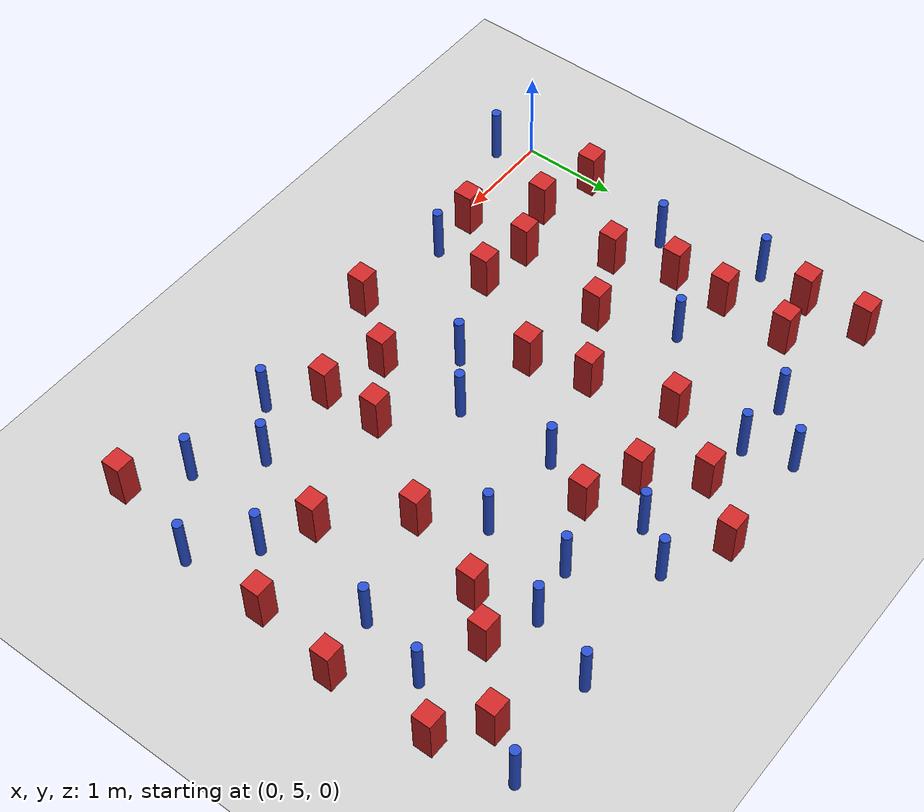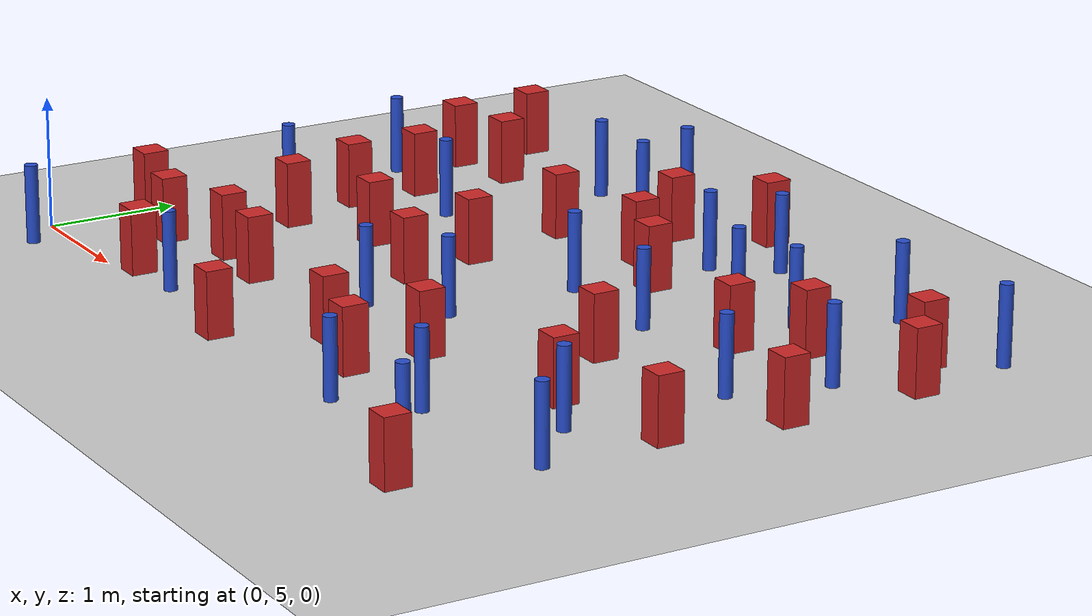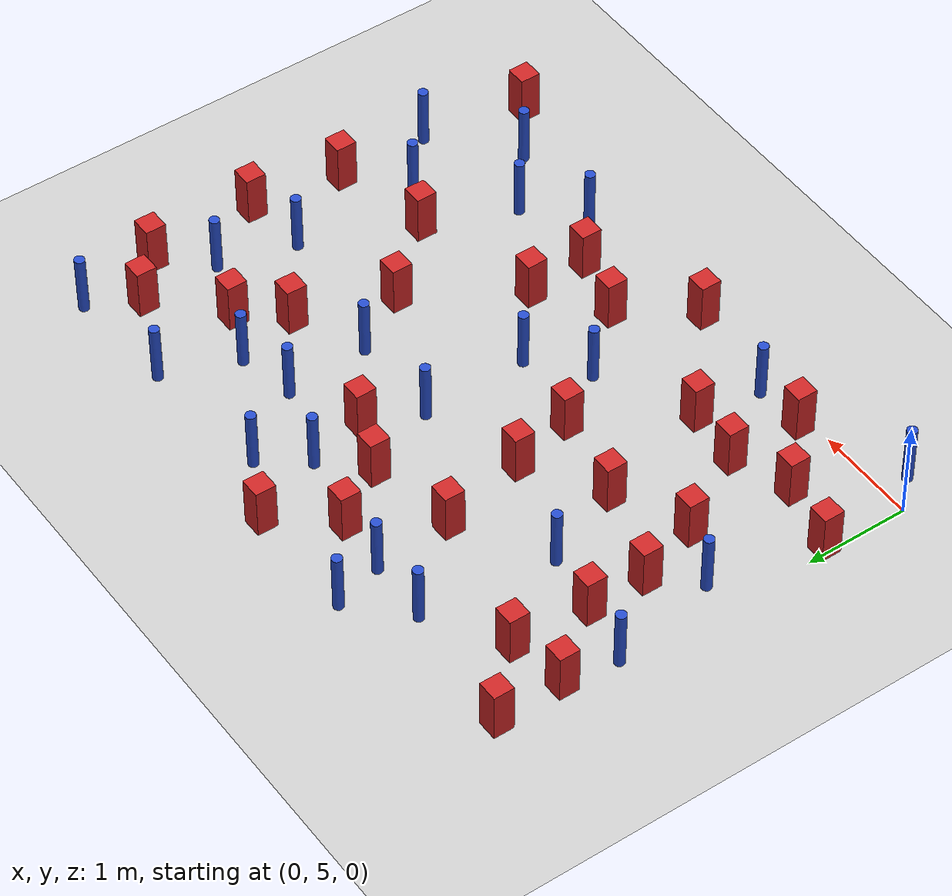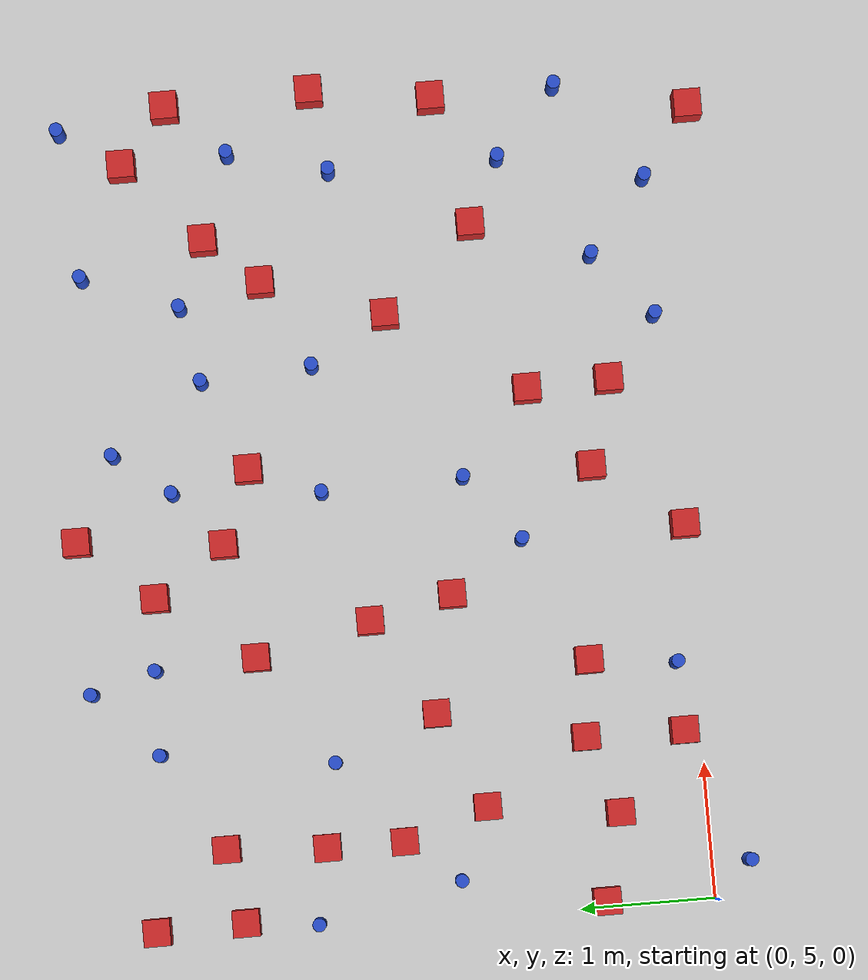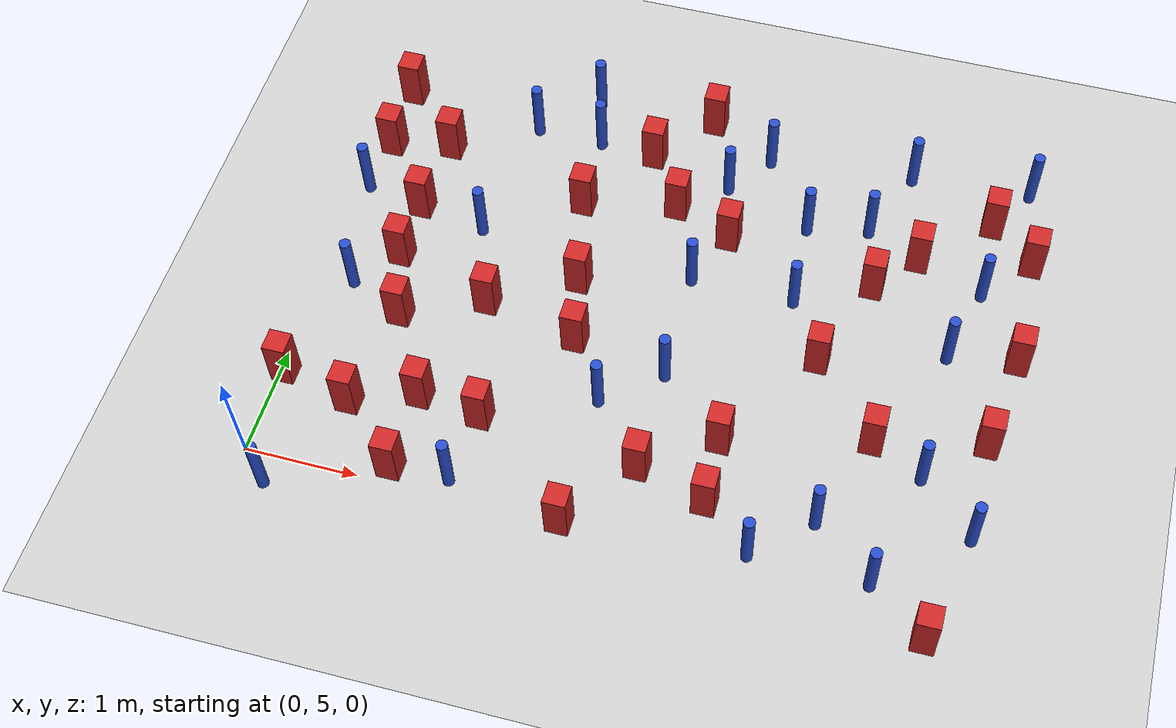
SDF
<sdf version="1.6">
 <world name="default">
  <model name="ground_plane">
   <static>1</static>
   <link name="link">
    <collision name="collision">
     <geometry><plane><normal>0 0 1</normal><size>100 100</size></plane></geometry>
     <surface><friction><ode><mu>100</mu><mu2>50</mu2></ode></friction></surface>
    </collision>
    <visual name="visual">
     <cast_shadows>0</cast_shadows>
     <geometry><plane><normal>0 0 1</normal><size>100 100</size></plane></geometry>
     <material>
      <ambient>1.0 1.0 1.0 1.0</ambient>
      <diffuse>0.8 0.8 0.8 1.0</diffuse>
      <specular>0.01 0.01 0.01 1.000000</specular>
     </material>
    </visual>
   </link>
  </model>
  <model name="square_post_obstacle0">
   <static>true</static>
   <pose>4.81066511319 7.96962893868 8.22691968438e-08 7.22125133819e-06 -7.54495500217e-07 2.29674213826e-05</pose>
   <link name="link">
    <pose>0 0 0.25 0 -0 0</pose>
    <inertial>
     <mass>100</mass>
     <inertia>
      <ixx>0.166667</ixx>
      <ixy>0</ixy>
      <ixz>0</ixz>
      <iyy>0.166667</iyy>
      <iyz>0</iyz>
      <izz>0.166667</izz>
     </inertia>
    </inertial>
    <collision name="collision"><geometry><box><size>.2 .2 .5</size></box></geometry></collision>
    <visual name="visual">
     <geometry><box><size>.2 .2 .5</size></box></geometry>
     <material>
      <script><name>Gazebo/Red</name><uri>file://media/materials/scripts/gazebo.material</uri></script>
     </material>
    </visual>
   </link>
  </model>
  <model name="square_post_obstacle2">
   <static>true</static>
   <pose>0.613346342673 7.25134652475 8.22691968438e-08 7.2212513382e-06 -7.54495500217e-07 2.29674213826e-05</pose>
   <link name="link">
    <pose>0 0 0.25 0 -0 0</pose>
    <inertial>
     <mass>100</mass>
     <inertia>
      <ixx>0.166667</ixx>
      <ixy>0</ixy>
      <ixz>0</ixz>
      <iyy>0.166667</iyy>
      <iyz>0</iyz>
      <izz>0.166667</izz>
     </inertia>
    </inertial>
    <collision name="collision"><geometry><box><size>.2 .2 .5</size></box></geometry></collision>
    <visual name="visual">
     <geometry><box><size>.2 .2 .5</size></box></geometry>
     <material>
      <script><name>Gazebo/Red</name><uri>file://media/materials/scripts/gazebo.material</uri></script>
     </material>
    </visual>
   </link>
  </model>
  <model name="square_post_obstacle6">
   <static>true</static>
   <pose>1.26814479406 5.86016983149 8.22691968438e-08 7.2212513382e-06 -7.54495500217e-07 2.29674213826e-05</pose>
   <link name="link">
    <pose>0 0 0.25 0 -0 0</pose>
    <inertial>
     <mass>100</mass>
     <inertia>
      <ixx>0.166667</ixx>
      <ixy>0</ixy>
      <ixz>0</ixz>
      <iyy>0.166667</iyy>
      <iyz>0</iyz>
      <izz>0.166667</izz>
     </inertia>
    </inertial>
    <collision name="collision"><geometry><box><size>.2 .2 .5</size></box></geometry></collision>
    <visual name="visual">
     <geometry><box><size>.2 .2 .5</size></box></geometry>
     <material>
      <script><name>Gazebo/Red</name><uri>file://media/materials/scripts/gazebo.material</uri></script>
     </material>
    </visual>
   </link>
  </model>
  <model name="pole_obstacle12">
   <static>true</static>
   <pose>3.22318054179 7.64608850501 2.88873142074e-08 -9.90536689859e-09 4.60219948989e-07 -1.20965994961e-07</pose>
   <link name="link">
    <pose>0 0 0.3 0 -0 0</pose>
    <inertial>
     <mass>1</mass>
     <inertia><ixx>0.145833</ixx><ixy>0</ixy><ixz>0</ixz><iyy>0.145833</iyy><iyz>0</iyz><izz>0.125</izz></inertia>
    </inertial>
    <collision name="collision">
     <geometry><cylinder><radius>0.05</radius><length>.6</length></cylinder></geometry>
    </collision>
    <visual name="visual">
     <geometry><cylinder><radius>0.05</radius><length>.6</length></cylinder></geometry>
     <material>
      <script><name>Gazebo/Blue</name><uri>file://media/materials/scripts/gazebo.material</uri></script>
     </material>
    </visual>
   </link>
  </model>
  <model name="square_post_obstacle8">
   <static>true</static>
   <pose>4.49751720878 7.07438937108 8.22691968438e-08 7.2212513382e-06 -7.54495500217e-07 2.29674213826e-05</pose>
   <link name="link">
    <pose>0 0 0.25 0 -0 0</pose>
    <inertial>
     <mass>100</mass>
     <inertia>
      <ixx>0.166667</ixx>
      <ixy>0</ixy>
      <ixz>0</ixz>
      <iyy>0.166667</iyy>
      <iyz>0</iyz>
      <izz>0.166667</izz>
     </inertia>
    </inertial>
    <collision name="collision"><geometry><box><size>.2 .2 .5</size></box></geometry></collision>
    <visual name="visual">
     <geometry><box><size>.2 .2 .5</size></box></geometry>
     <material>
      <script><name>Gazebo/Red</name><uri>file://media/materials/scripts/gazebo.material</uri></script>
     </material>
    </visual>
   </link>
  </model>
  <model name="square_post_obstacle12">
   <static>true</static>
   <pose>6.15612264318 8.56737205794 8.22691968438e-08 7.22125133819e-06 -7.54495500217e-07 2.29674213826e-05</pose>
   <link name="link">
    <pose>0 0 0.25 0 -0 0</pose>
    <inertial>
     <mass>100</mass>
     <inertia>
      <ixx>0.166667</ixx>
      <ixy>0</ixy>
      <ixz>0</ixz>
      <iyy>0.166667</iyy>
      <iyz>0</iyz>
      <izz>0.166667</izz>
     </inertia>
    </inertial>
    <collision name="collision"><geometry><box><size>.2 .2 .5</size></box></geometry></collision>
    <visual name="visual">
     <geometry><box><size>.2 .2 .5</size></box></geometry>
     <material>
      <script><name>Gazebo/Red</name><uri>file://media/materials/scripts/gazebo.material</uri></script>
     </material>
    </visual>
   </link>
  </model>
  <model name="pole_obstacle39">
   <static>true</static>
   <pose>1.76379033655 5.14610116585 2.88873142074e-08 -9.90536689852e-09 4.60219948989e-07 -1.2096599496e-07</pose>
   <link name="link">
    <pose>0 0 0.3 0 -0 0</pose>
    <inertial>
     <mass>1</mass>
     <inertia><ixx>0.145833</ixx><ixy>0</ixy><ixz>0</ixz><iyy>0.145833</iyy><iyz>0</iyz><izz>0.125</izz></inertia>
    </inertial>
    <collision name="collision">
     <geometry><cylinder><radius>0.05</radius><length>.6</length></cylinder></geometry>
    </collision>
    <visual name="visual">
     <geometry><cylinder><radius>0.05</radius><length>.6</length></cylinder></geometry>
     <material>
      <script><name>Gazebo/Blue</name><uri>file://media/materials/scripts/gazebo.material</uri></script>
     </material>
    </visual>
   </link>
  </model>
  <model name="pole_obstacle42">
   <static>true</static>
   <pose>5.5778330099 6.15277064663 2.88873142074e-08 -9.90536690842e-09 4.60219948965e-07 -1.20965994976e-07</pose>
   <link name="link">
    <pose>0 0 0.3 0 -0 0</pose>
    <inertial>
     <mass>1</mass>
     <inertia><ixx>0.145833</ixx><ixy>0</ixy><ixz>0</ixz><iyy>0.145833</iyy><iyz>0</iyz><izz>0.125</izz></inertia>
    </inertial>
    <collision name="collision">
     <geometry><cylinder><radius>0.05</radius><length>.6</length></cylinder></geometry>
    </collision>
    <visual name="visual">
     <geometry><cylinder><radius>0.05</radius><length>.6</length></cylinder></geometry>
     <material>
      <script><name>Gazebo/Blue</name><uri>file://media/materials/scripts/gazebo.material</uri></script>
     </material>
    </visual>
   </link>
  </model>
  <model name="pole_obstacle45">
   <static>true</static>
   <pose>2.01332987493 8.97232441022 2.88873142074e-08 -9.90536692041e-09 4.60219948937e-07 -1.20965994983e-07</pose>
   <link name="link">
    <pose>0 0 0.3 0 -0 0</pose>
    <inertial>
     <mass>1</mass>
     <inertia><ixx>0.145833</ixx><ixy>0</ixy><ixz>0</ixz><iyy>0.145833</iyy><iyz>0</iyz><izz>0.125</izz></inertia>
    </inertial>
    <collision name="collision">
     <geometry><cylinder><radius>0.05</radius><length>.6</length></cylinder></geometry>
    </collision>
    <visual name="visual">
     <geometry><cylinder><radius>0.05</radius><length>.6</length></cylinder></geometry>
     <material>
      <script><name>Gazebo/Blue</name><uri>file://media/materials/scripts/gazebo.material</uri></script>
     </material>
    </visual>
   </link>
  </model>
  <model name="square_post_obstacle38">
   <static>true</static>
   <pose>6.18678559936 7.49544702307 8.22691968438e-08 7.2212513382e-06 -7.54495500217e-07 2.29674213826e-05</pose>
   <link name="link">
    <pose>0 0 0.25 0 -0 0</pose>
    <inertial>
     <mass>100</mass>
     <inertia>
      <ixx>0.166667</ixx>
      <ixy>0</ixy>
      <ixz>0</ixz>
      <iyy>0.166667</iyy>
      <iyz>0</iyz>
      <izz>0.166667</izz>
     </inertia>
    </inertial>
    <collision name="collision"><geometry><box><size>.2 .2 .5</size></box></geometry></collision>
    <visual name="visual">
     <geometry><box><size>.2 .2 .5</size></box></geometry>
     <material>
      <script><name>Gazebo/Red</name><uri>file://media/materials/scripts/gazebo.material</uri></script>
     </material>
    </visual>
   </link>
  </model>
  <model name="pole_obstacle56">
   <static>true</static>
   <pose>4.3289605643 5.09669228782 2.88873142074e-08 -9.90536690842e-09 4.60219948965e-07 -1.20965994976e-07</pose>
   <link name="link">
    <pose>0 0 0.3 0 -0 0</pose>
    <inertial>
     <mass>1</mass>
     <inertia><ixx>0.145833</ixx><ixy>0</ixy><ixz>0</ixz><iyy>0.145833</iyy><iyz>0</iyz><izz>0.125</izz></inertia>
    </inertial>
    <collision name="collision">
     <geometry><cylinder><radius>0.05</radius><length>.6</length></cylinder></geometry>
    </collision>
    <visual name="visual">
     <geometry><cylinder><radius>0.05</radius><length>.6</length></cylinder></geometry>
     <material>
      <script><name>Gazebo/Blue</name><uri>file://media/materials/scripts/gazebo.material</uri></script>
     </material>
    </visual>
   </link>
  </model>
  <model name="pole_obstacle58">
   <static>true</static>
   <pose>6.07389857568 5.69617216633 2.88873142074e-08 -9.90536690842e-09 4.60219948965e-07 -1.20965994976e-07</pose>
   <link name="link">
    <pose>0 0 0.3 0 -0 0</pose>
    <inertial>
     <mass>1</mass>
     <inertia><ixx>0.145833</ixx><ixy>0</ixy><ixz>0</ixz><iyy>0.145833</iyy><iyz>0</iyz><izz>0.125</izz></inertia>
    </inertial>
    <collision name="collision">
     <geometry><cylinder><radius>0.05</radius><length>.6</length></cylinder></geometry>
    </collision>
    <visual name="visual">
     <geometry><cylinder><radius>0.05</radius><length>.6</length></cylinder></geometry>
     <material>
      <script><name>Gazebo/Blue</name><uri>file://media/materials/scripts/gazebo.material</uri></script>
     </material>
    </visual>
   </link>
  </model>
  <model name="pole_obstacle60">
   <static>true</static>
   <pose>4.93993918342 9.28264716103 2.88873142074e-08 -9.9053668967e-09 4.60219948993e-07 -1.20965994957e-07</pose>
   <link name="link">
    <pose>0 0 0.3 0 -0 0</pose>
    <inertial>
     <mass>1</mass>
     <inertia><ixx>0.145833</ixx><ixy>0</ixy><ixz>0</ixz><iyy>0.145833</iyy><iyz>0</iyz><izz>0.125</izz></inertia>
    </inertial>
    <collision name="collision">
     <geometry><cylinder><radius>0.05</radius><length>.6</length></cylinder></geometry>
    </collision>
    <visual name="visual">
     <geometry><cylinder><radius>0.05</radius><length>.6</length></cylinder></geometry>
     <material>
      <script><name>Gazebo/Blue</name><uri>file://media/materials/scripts/gazebo.material</uri></script>
     </material>
    </visual>
   </link>
  </model>
  <model name="pole_obstacle61">
   <static>true</static>
   <pose>4.66513502519 8.57745974839 2.88873142074e-08 -9.9053668967e-09 4.60219948993e-07 -1.20965994957e-07</pose>
   <link name="link">
    <pose>0 0 0.3 0 -0 0</pose>
    <inertial>
     <mass>1</mass>
     <inertia><ixx>0.145833</ixx><ixy>0</ixy><ixz>0</ixz><iyy>0.145833</iyy><iyz>0</iyz><izz>0.125</izz></inertia>
    </inertial>
    <collision name="collision">
     <geometry><cylinder><radius>0.05</radius><length>.6</length></cylinder></geometry>
    </collision>
    <visual name="visual">
     <geometry><cylinder><radius>0.05</radius><length>.6</length></cylinder></geometry>
     <material>
      <script><name>Gazebo/Blue</name><uri>file://media/materials/scripts/gazebo.material</uri></script>
     </material>
    </visual>
   </link>
  </model>
  <model name="square_post_obstacle48">
   <static>true</static>
   <pose>0.66480196534 8.56048375507 8.22691968438e-08 7.22125133819e-06 -7.54495500217e-07 2.29674213826e-05</pose>
   <link name="link">
    <pose>0 0 0.25 0 -0 0</pose>
    <inertial>
     <mass>100</mass>
     <inertia>
      <ixx>0.166667</ixx>
      <ixy>0</ixy>
      <ixz>0</ixz>
      <iyy>0.166667</iyy>
      <iyz>0</iyz>
      <izz>0.166667</izz>
     </inertia>
    </inertial>
    <collision name="collision"><geometry><box><size>.2 .2 .5</size></box></geometry></collision>
    <visual name="visual">
     <geometry><box><size>.2 .2 .5</size></box></geometry>
     <material>
      <script><name>Gazebo/Red</name><uri>file://media/materials/scripts/gazebo.material</uri></script>
     </material>
    </visual>
   </link>
  </model>
  <model name="pole_obstacle65">
   <static>true</static>
   <pose>0.270718877437 4.73403094236 2.88873142074e-08 -9.90536689592e-09 4.60219948995e-07 -1.20965994956e-07</pose>
   <link name="link">
    <pose>0 0 0.3 0 -0 0</pose>
    <inertial>
     <mass>1</mass>
     <inertia><ixx>0.145833</ixx><ixy>0</ixy><ixz>0</ixz><iyy>0.145833</iyy><iyz>0</iyz><izz>0.125</izz></inertia>
    </inertial>
    <collision name="collision">
     <geometry><cylinder><radius>0.05</radius><length>.6</length></cylinder></geometry>
    </collision>
    <visual name="visual">
     <geometry><cylinder><radius>0.05</radius><length>.6</length></cylinder></geometry>
     <material>
      <script><name>Gazebo/Blue</name><uri>file://media/materials/scripts/gazebo.material</uri></script>
     </material>
    </visual>
   </link>
  </model>
  <model name="pole_obstacle72">
   <static>true</static>
   <pose>1.39050049285 8.98701235548 2.88873142074e-08 -9.90536690474e-09 4.60219948974e-07 -1.2096599497e-07</pose>
   <link name="link">
    <pose>0 0 0.3 0 -0 0</pose>
    <inertial>
     <mass>1</mass>
     <inertia><ixx>0.145833</ixx><ixy>0</ixy><ixz>0</ixz><iyy>0.145833</iyy><iyz>0</iyz><izz>0.125</izz></inertia>
    </inertial>
    <collision name="collision">
     <geometry><cylinder><radius>0.05</radius><length>.6</length></cylinder></geometry>
    </collision>
    <visual name="visual">
     <geometry><cylinder><radius>0.05</radius><length>.6</length></cylinder></geometry>
     <material>
      <script><name>Gazebo/Blue</name><uri>file://media/materials/scripts/gazebo.material</uri></script>
     </material>
    </visual>
   </link>
  </model>
  <model name="square_post_obstacle67">
   <static>true</static>
   <pose>2.05128967483 8.22743267712 8.22691968438e-08 7.22125133819e-06 -7.54495500217e-07 2.29674213826e-05</pose>
   <link name="link">
    <pose>0 0 0.25 0 -0 0</pose>
    <inertial>
     <mass>100</mass>
     <inertia>
      <ixx>0.166667</ixx>
      <ixy>0</ixy>
      <ixz>0</ixz>
      <iyy>0.166667</iyy>
      <iyz>0</iyz>
      <izz>0.166667</izz>
     </inertia>
    </inertial>
    <collision name="collision"><geometry><box><size>.2 .2 .5</size></box></geometry></collision>
    <visual name="visual">
     <geometry><box><size>.2 .2 .5</size></box></geometry>
     <material>
      <script><name>Gazebo/Red</name><uri>file://media/materials/scripts/gazebo.material</uri></script>
     </material>
    </visual>
   </link>
  </model>
  <model name="pole_obstacle85">
   <static>true</static>
   <pose>4.1590695214 7.64211157319 2.88873142074e-08 -9.90536690842e-09 4.60219948965e-07 -1.20965994976e-07</pose>
   <link name="link">
    <pose>0 0 0.3 0 -0 0</pose>
    <inertial>
     <mass>1</mass>
     <inertia><ixx>0.145833</ixx><ixy>0</ixy><ixz>0</ixz><iyy>0.145833</iyy><iyz>0</iyz><izz>0.125</izz></inertia>
    </inertial>
    <collision name="collision">
     <geometry><cylinder><radius>0.05</radius><length>.6</length></cylinder></geometry>
    </collision>
    <visual name="visual">
     <geometry><cylinder><radius>0.05</radius><length>.6</length></cylinder></geometry>
     <material>
      <script><name>Gazebo/Blue</name><uri>file://media/materials/scripts/gazebo.material</uri></script>
     </material>
    </visual>
   </link>
  </model>
  <model name="square_post_obstacle76">
   <static>true</static>
   <pose>2.90208036587 8.39718754492 8.22691968438e-08 7.22125133819e-06 -7.54495500217e-07 2.29674213826e-05</pose>
   <link name="link">
    <pose>0 0 0.25 0 -0 0</pose>
    <inertial>
     <mass>100</mass>
     <inertia>
      <ixx>0.166667</ixx>
      <ixy>0</ixy>
      <ixz>0</ixz>
      <iyy>0.166667</iyy>
      <iyz>0</iyz>
      <izz>0.166667</izz>
     </inertia>
    </inertial>
    <collision name="collision"><geometry><box><size>.2 .2 .5</size></box></geometry></collision>
    <visual name="visual">
     <geometry><box><size>.2 .2 .5</size></box></geometry>
     <material>
      <script><name>Gazebo/Red</name><uri>file://media/materials/scripts/gazebo.material</uri></script>
     </material>
    </visual>
   </link>
  </model>
  <model name="square_post_obstacle77">
   <static>true</static>
   <pose>5.1116755871 6.38995868843 8.22691968438e-08 7.2212513382e-06 -7.54495500217e-07 2.29674213826e-05</pose>
   <link name="link">
    <pose>0 0 0.25 0 -0 0</pose>
    <inertial>
     <mass>100</mass>
     <inertia>
      <ixx>0.166667</ixx>
      <ixy>0</ixy>
      <ixz>0</ixz>
      <iyy>0.166667</iyy>
      <iyz>0</iyz>
      <izz>0.166667</izz>
     </inertia>
    </inertial>
    <collision name="collision"><geometry><box><size>.2 .2 .5</size></box></geometry></collision>
    <visual name="visual">
     <geometry><box><size>.2 .2 .5</size></box></geometry>
     <material>
      <script><name>Gazebo/Red</name><uri>file://media/materials/scripts/gazebo.material</uri></script>
     </material>
    </visual>
   </link>
  </model>
  <model name="square_post_obstacle80">
   <static>true</static>
   <pose>3.88543958892 5.47059608933 8.22691968438e-08 7.2212513382e-06 -7.54495500217e-07 2.29674213826e-05</pose>
   <link name="link">
    <pose>0 0 0.25 0 -0 0</pose>
    <inertial>
     <mass>100</mass>
     <inertia>
      <ixx>0.166667</ixx>
      <ixy>0</ixy>
      <ixz>0</ixz>
      <iyy>0.166667</iyy>
      <iyz>0</iyz>
      <izz>0.166667</izz>
     </inertia>
    </inertial>
    <collision name="collision"><geometry><box><size>.2 .2 .5</size></box></geometry></collision>
    <visual name="visual">
     <geometry><box><size>.2 .2 .5</size></box></geometry>
     <material>
      <script><name>Gazebo/Red</name><uri>file://media/materials/scripts/gazebo.material</uri></script>
     </material>
    </visual>
   </link>
  </model>
  <model name="square_post_obstacle82">
   <static>true</static>
   <pose>0.0534346377421 5.80671359667 8.22691968438e-08 7.2212513382e-06 -7.54495500217e-07 2.29674213826e-05</pose>
   <link name="link">
    <pose>0 0 0.25 0 -0 0</pose>
    <inertial>
     <mass>100</mass>
     <inertia>
      <ixx>0.166667</ixx>
      <ixy>0</ixy>
      <ixz>0</ixz>
      <iyy>0.166667</iyy>
      <iyz>0</iyz>
      <izz>0.166667</izz>
     </inertia>
    </inertial>
    <collision name="collision"><geometry><box><size>.2 .2 .5</size></box></geometry></collision>
    <visual name="visual">
     <geometry><box><size>.2 .2 .5</size></box></geometry>
     <material>
      <script><name>Gazebo/Red</name><uri>file://media/materials/scripts/gazebo.material</uri></script>
     </material>
    </visual>
   </link>
  </model>
  <model name="square_post_obstacle83">
   <static>true</static>
   <pose>2.25128187951 7.36881261451 8.22691968438e-08 7.2212513382e-06 -7.54495500217e-07 2.29674213826e-05</pose>
   <link name="link">
    <pose>0 0 0.25 0 -0 0</pose>
    <inertial>
     <mass>100</mass>
     <inertia>
      <ixx>0.166667</ixx>
      <ixy>0</ixy>
      <ixz>0</ixz>
      <iyy>0.166667</iyy>
      <iyz>0</iyz>
      <izz>0.166667</izz>
     </inertia>
    </inertial>
    <collision name="collision"><geometry><box><size>.2 .2 .5</size></box></geometry></collision>
    <visual name="visual">
     <geometry><box><size>.2 .2 .5</size></box></geometry>
     <material>
      <script><name>Gazebo/Red</name><uri>file://media/materials/scripts/gazebo.material</uri></script>
     </material>
    </visual>
   </link>
  </model>
  <model name="square_post_obstacle84">
   <static>true</static>
   <pose>0.818376541393 6.6230674518 8.22691968438e-08 7.2212513382e-06 -7.54495500217e-07 2.29674213826e-05</pose>
   <link name="link">
    <pose>0 0 0.25 0 -0 0</pose>
    <inertial>
     <mass>100</mass>
     <inertia>
      <ixx>0.166667</ixx>
      <ixy>0</ixy>
      <ixz>0</ixz>
      <iyy>0.166667</iyy>
      <iyz>0</iyz>
      <izz>0.166667</izz>
     </inertia>
    </inertial>
    <collision name="collision"><geometry><box><size>.2 .2 .5</size></box></geometry></collision>
    <visual name="visual">
     <geometry><box><size>.2 .2 .5</size></box></geometry>
     <material>
      <script><name>Gazebo/Red</name><uri>file://media/materials/scripts/gazebo.material</uri></script>
     </material>
    </visual>
   </link>
  </model>
  <model name="pole_obstacle100">
   <static>true</static>
   <pose>1.23139760334 7.70916895037 2.88873142074e-08 -9.90536689852e-09 4.60219948989e-07 -1.2096599496e-07</pose>
   <link name="link">
    <pose>0 0 0.3 0 -0 0</pose>
    <inertial>
     <mass>1</mass>
     <inertia><ixx>0.145833</ixx><ixy>0</ixy><ixz>0</ixz><iyy>0.145833</iyy><iyz>0</iyz><izz>0.125</izz></inertia>
    </inertial>
    <collision name="collision">
     <geometry><cylinder><radius>0.05</radius><length>.6</length></cylinder></geometry>
    </collision>
    <visual name="visual">
     <geometry><cylinder><radius>0.05</radius><length>.6</length></cylinder></geometry>
     <material>
      <script><name>Gazebo/Blue</name><uri>file://media/materials/scripts/gazebo.material</uri></script>
     </material>
    </visual>
   </link>
  </model>
  <model name="pole_obstacle101">
   <static>true</static>
   <pose>1.8765730401 9.453952291 2.88873142074e-08 -9.90536690474e-09 4.60219948974e-07 -1.2096599497e-07</pose>
   <link name="link">
    <pose>0 0 0.3 0 -0 0</pose>
    <inertial>
     <mass>1</mass>
     <inertia><ixx>0.145833</ixx><ixy>0</ixy><ixz>0</ixz><iyy>0.145833</iyy><iyz>0</iyz><izz>0.125</izz></inertia>
    </inertial>
    <collision name="collision">
     <geometry><cylinder><radius>0.05</radius><length>.6</length></cylinder></geometry>
    </collision>
    <visual name="visual">
     <geometry><cylinder><radius>0.05</radius><length>.6</length></cylinder></geometry>
     <material>
      <script><name>Gazebo/Blue</name><uri>file://media/materials/scripts/gazebo.material</uri></script>
     </material>
    </visual>
   </link>
  </model>
  <model name="pole_obstacle111">
   <static>true</static>
   <pose>0.0591107554442 7.92482986427 2.88873142074e-08 -9.90536689796e-09 4.6021994899e-07 -1.20965994961e-07</pose>
   <link name="link">
    <pose>0 0 0.3 0 -0 0</pose>
    <inertial>
     <mass>1</mass>
     <inertia><ixx>0.145833</ixx><ixy>0</ixy><ixz>0</ixz><iyy>0.145833</iyy><iyz>0</iyz><izz>0.125</izz></inertia>
    </inertial>
    <collision name="collision">
     <geometry><cylinder><radius>0.05</radius><length>.6</length></cylinder></geometry>
    </collision>
    <visual name="visual">
     <geometry><cylinder><radius>0.05</radius><length>.6</length></cylinder></geometry>
     <material>
      <script><name>Gazebo/Blue</name><uri>file://media/materials/scripts/gazebo.material</uri></script>
     </material>
    </visual>
   </link>
  </model>
  <model name="square_post_obstacle112">
   <static>true</static>
   <pose>2.54560586326 8.93274827982 8.22691968438e-08 7.22125133819e-06 -7.54495500217e-07 2.29674213826e-05</pose>
   <link name="link">
    <pose>0 0 0.25 0 -0 0</pose>
    <inertial>
     <mass>100</mass>
     <inertia>
      <ixx>0.166667</ixx>
      <ixy>0</ixy>
      <ixz>0</ixz>
      <iyy>0.166667</iyy>
      <iyz>0</iyz>
      <izz>0.166667</izz>
     </inertia>
    </inertial>
    <collision name="collision"><geometry><box><size>.2 .2 .5</size></box></geometry></collision>
    <visual name="visual">
     <geometry><box><size>.2 .2 .5</size></box></geometry>
     <material>
      <script><name>Gazebo/Red</name><uri>file://media/materials/scripts/gazebo.material</uri></script>
     </material>
    </visual>
   </link>
  </model>
  <model name="pole_obstacle117">
   <static>true</static>
   <pose>4.80717258044 5.52538152049 2.88873142074e-08 -9.90536690842e-09 4.60219948965e-07 -1.20965994976e-07</pose>
   <link name="link">
    <pose>0 0 0.3 0 -0 0</pose>
    <inertial>
     <mass>1</mass>
     <inertia><ixx>0.145833</ixx><ixy>0</ixy><ixz>0</ixz><iyy>0.145833</iyy><iyz>0</iyz><izz>0.125</izz></inertia>
    </inertial>
    <collision name="collision">
     <geometry><cylinder><radius>0.05</radius><length>.6</length></cylinder></geometry>
    </collision>
    <visual name="visual">
     <geometry><cylinder><radius>0.05</radius><length>.6</length></cylinder></geometry>
     <material>
      <script><name>Gazebo/Blue</name><uri>file://media/materials/scripts/gazebo.material</uri></script>
     </material>
    </visual>
   </link>
  </model>
  <model name="pole_obstacle119">
   <static>true</static>
   <pose>0.291625185483 6.8571291157 2.88873142074e-08 -9.90536689592e-09 4.60219948995e-07 -1.20965994956e-07</pose>
   <link name="link">
    <pose>0 0 0.3 0 -0 0</pose>
    <inertial>
     <mass>1</mass>
     <inertia><ixx>0.145833</ixx><ixy>0</ixy><ixz>0</ixz><iyy>0.145833</iyy><iyz>0</iyz><izz>0.125</izz></inertia>
    </inertial>
    <collision name="collision">
     <geometry><cylinder><radius>0.05</radius><length>.6</length></cylinder></geometry>
    </collision>
    <visual name="visual">
     <geometry><cylinder><radius>0.05</radius><length>.6</length></cylinder></geometry>
     <material>
      <script><name>Gazebo/Blue</name><uri>file://media/materials/scripts/gazebo.material</uri></script>
     </material>
    </visual>
   </link>
  </model>
  <model name="pole_obstacle121">
   <static>true</static>
   <pose>5.58387289649 7.4015965391 2.88873142074e-08 -9.90536690842e-09 4.60219948965e-07 -1.20965994976e-07</pose>
   <link name="link">
    <pose>0 0 0.3 0 -0 0</pose>
    <inertial>
     <mass>1</mass>
     <inertia><ixx>0.145833</ixx><ixy>0</ixy><ixz>0</ixz><iyy>0.145833</iyy><iyz>0</iyz><izz>0.125</izz></inertia>
    </inertial>
    <collision name="collision">
     <geometry><cylinder><radius>0.05</radius><length>.6</length></cylinder></geometry>
    </collision>
    <visual name="visual">
     <geometry><cylinder><radius>0.05</radius><length>.6</length></cylinder></geometry>
     <material>
      <script><name>Gazebo/Blue</name><uri>file://media/materials/scripts/gazebo.material</uri></script>
     </material>
    </visual>
   </link>
  </model>
  <model name="square_post_obstacle128">
   <static>true</static>
   <pose>0.114758145095 8.46013037056 8.22691968438e-08 7.22125133819e-06 -7.54495500217e-07 2.29674213826e-05</pose>
   <link name="link">
    <pose>0 0 0.25 0 -0 0</pose>
    <inertial>
     <mass>100</mass>
     <inertia>
      <ixx>0.166667</ixx>
      <ixy>0</ixy>
      <ixz>0</ixz>
      <iyy>0.166667</iyy>
      <iyz>0</iyz>
      <izz>0.166667</izz>
     </inertia>
    </inertial>
    <collision name="collision"><geometry><box><size>.2 .2 .5</size></box></geometry></collision>
    <visual name="visual">
     <geometry><box><size>.2 .2 .5</size></box></geometry>
     <material>
      <script><name>Gazebo/Red</name><uri>file://media/materials/scripts/gazebo.material</uri></script>
     </material>
    </visual>
   </link>
  </model>
  <model name="square_post_obstacle129">
   <static>true</static>
   <pose>2.77030089623 5.00194283173 8.22691968438e-08 7.2212513382e-06 -7.54495500217e-07 2.29674213826e-05</pose>
   <link name="link">
    <pose>0 0 0.25 0 -0 0</pose>
    <inertial>
     <mass>100</mass>
     <inertia>
      <ixx>0.166667</ixx>
      <ixy>0</ixy>
      <ixz>0</ixz>
      <iyy>0.166667</iyy>
      <iyz>0</iyz>
      <izz>0.166667</izz>
     </inertia>
    </inertial>
    <collision name="collision"><geometry><box><size>.2 .2 .5</size></box></geometry></collision>
    <visual name="visual">
     <geometry><box><size>.2 .2 .5</size></box></geometry>
     <material>
      <script><name>Gazebo/Red</name><uri>file://media/materials/scripts/gazebo.material</uri></script>
     </material>
    </visual>
   </link>
  </model>
  <model name="square_post_obstacle130">
   <static>true</static>
   <pose>1.25799043773 5.13515662513 8.22691968438e-08 7.2212513382e-06 -7.54495500217e-07 2.29674213826e-05</pose>
   <link name="link">
    <pose>0 0 0.25 0 -0 0</pose>
    <inertial>
     <mass>100</mass>
     <inertia>
      <ixx>0.166667</ixx>
      <ixy>0</ixy>
      <ixz>0</ixz>
      <iyy>0.166667</iyy>
      <iyz>0</iyz>
      <izz>0.166667</izz>
     </inertia>
    </inertial>
    <collision name="collision"><geometry><box><size>.2 .2 .5</size></box></geometry></collision>
    <visual name="visual">
     <geometry><box><size>.2 .2 .5</size></box></geometry>
     <material>
      <script><name>Gazebo/Red</name><uri>file://media/materials/scripts/gazebo.material</uri></script>
     </material>
    </visual>
   </link>
  </model>
  <model name="square_post_obstacle133">
   <static>true</static>
   <pose>0.694928855316 5.65454220093 8.22691968438e-08 7.2212513382e-06 -7.54495500217e-07 2.29674213826e-05</pose>
   <link name="link">
    <pose>0 0 0.25 0 -0 0</pose>
    <inertial>
     <mass>100</mass>
     <inertia>
      <ixx>0.166667</ixx>
      <ixy>0</ixy>
      <ixz>0</ixz>
      <iyy>0.166667</iyy>
      <iyz>0</iyz>
      <izz>0.166667</izz>
     </inertia>
    </inertial>
    <collision name="collision"><geometry><box><size>.2 .2 .5</size></box></geometry></collision>
    <visual name="visual">
     <geometry><box><size>.2 .2 .5</size></box></geometry>
     <material>
      <script><name>Gazebo/Red</name><uri>file://media/materials/scripts/gazebo.material</uri></script>
     </material>
    </visual>
   </link>
  </model>
  <model name="square_post_obstacle134">
   <static>true</static>
   <pose>6.06482351693 6.60563841251 8.22691968438e-08 7.2212513382e-06 -7.54495500217e-07 2.29674213826e-05</pose>
   <link name="link">
    <pose>0 0 0.25 0 -0 0</pose>
    <inertial>
     <mass>100</mass>
     <inertia>
      <ixx>0.166667</ixx>
      <ixy>0</ixy>
      <ixz>0</ixz>
      <iyy>0.166667</iyy>
      <iyz>0</iyz>
      <izz>0.166667</izz>
     </inertia>
    </inertial>
    <collision name="collision"><geometry><box><size>.2 .2 .5</size></box></geometry></collision>
    <visual name="visual">
     <geometry><box><size>.2 .2 .5</size></box></geometry>
     <material>
      <script><name>Gazebo/Red</name><uri>file://media/materials/scripts/gazebo.material</uri></script>
     </material>
    </visual>
   </link>
  </model>
  <model name="square_post_obstacle139">
   <static>true</static>
   <pose>3.4406342312 8.17074600161 8.22691968438e-08 7.22125133819e-06 -7.54495500217e-07 2.29674213826e-05</pose>
   <link name="link">
    <pose>0 0 0.25 0 -0 0</pose>
    <inertial>
     <mass>100</mass>
     <inertia>
      <ixx>0.166667</ixx>
      <ixy>0</ixy>
      <ixz>0</ixz>
      <iyy>0.166667</iyy>
      <iyz>0</iyz>
      <izz>0.166667</izz>
     </inertia>
    </inertial>
    <collision name="collision"><geometry><box><size>.2 .2 .5</size></box></geometry></collision>
    <visual name="visual">
     <geometry><box><size>.2 .2 .5</size></box></geometry>
     <material>
      <script><name>Gazebo/Red</name><uri>file://media/materials/scripts/gazebo.material</uri></script>
     </material>
    </visual>
   </link>
  </model>
  <model name="pole_obstacle143">
   <static>true</static>
   <pose>2.76016568506 6.20691576358 2.88873142074e-08 -9.90536689859e-09 4.60219948989e-07 -1.20965994961e-07</pose>
   <link name="link">
    <pose>0 0 0.3 0 -0 0</pose>
    <inertial>
     <mass>1</mass>
     <inertia><ixx>0.145833</ixx><ixy>0</ixy><ixz>0</ixz><iyy>0.145833</iyy><iyz>0</iyz><izz>0.125</izz></inertia>
    </inertial>
    <collision name="collision">
     <geometry><cylinder><radius>0.05</radius><length>.6</length></cylinder></geometry>
    </collision>
    <visual name="visual">
     <geometry><cylinder><radius>0.05</radius><length>.6</length></cylinder></geometry>
     <material>
      <script><name>Gazebo/Blue</name><uri>file://media/materials/scripts/gazebo.material</uri></script>
     </material>
    </visual>
   </link>
  </model>
  <model name="pole_obstacle149">
   <static>true</static>
   <pose>3.61586062922 9.15794831351 2.88873142074e-08 -9.90536692318e-09 4.6021994893e-07 -1.20965994988e-07</pose>
   <link name="link">
    <pose>0 0 0.3 0 -0 0</pose>
    <inertial>
     <mass>1</mass>
     <inertia><ixx>0.145833</ixx><ixy>0</ixy><ixz>0</ixz><iyy>0.145833</iyy><iyz>0</iyz><izz>0.125</izz></inertia>
    </inertial>
    <collision name="collision">
     <geometry><cylinder><radius>0.05</radius><length>.6</length></cylinder></geometry>
    </collision>
    <visual name="visual">
     <geometry><cylinder><radius>0.05</radius><length>.6</length></cylinder></geometry>
     <material>
      <script><name>Gazebo/Blue</name><uri>file://media/materials/scripts/gazebo.material</uri></script>
     </material>
    </visual>
   </link>
  </model>
  <model name="square_post_obstacle150">
   <static>true</static>
   <pose>5.84997625306 4.72483028517 8.22691968438e-08 7.2212513382e-06 -7.54495500217e-07 2.29674213826e-05</pose>
   <link name="link">
    <pose>0 0 0.25 0 -0 0</pose>
    <inertial>
     <mass>100</mass>
     <inertia>
      <ixx>0.166667</ixx>
      <ixy>0</ixy>
      <ixz>0</ixz>
      <iyy>0.166667</iyy>
      <iyz>0</iyz>
      <izz>0.166667</izz>
     </inertia>
    </inertial>
    <collision name="collision"><geometry><box><size>.2 .2 .5</size></box></geometry></collision>
    <visual name="visual">
     <geometry><box><size>.2 .2 .5</size></box></geometry>
     <material>
      <script><name>Gazebo/Red</name><uri>file://media/materials/scripts/gazebo.material</uri></script>
     </material>
    </visual>
   </link>
  </model>
  <model name="pole_obstacle153">
   <static>true</static>
   <pose>3.30400535821 8.74447630137 2.88873142074e-08 -9.90536692318e-09 4.6021994893e-07 -1.20965994988e-07</pose>
   <link name="link">
    <pose>0 0 0.3 0 -0 0</pose>
    <inertial>
     <mass>1</mass>
     <inertia><ixx>0.145833</ixx><ixy>0</ixy><ixz>0</ixz><iyy>0.145833</iyy><iyz>0</iyz><izz>0.125</izz></inertia>
    </inertial>
    <collision name="collision">
     <geometry><cylinder><radius>0.05</radius><length>.6</length></cylinder></geometry>
    </collision>
    <visual name="visual">
     <geometry><cylinder><radius>0.05</radius><length>.6</length></cylinder></geometry>
     <material>
      <script><name>Gazebo/Blue</name><uri>file://media/materials/scripts/gazebo.material</uri></script>
     </material>
    </visual>
   </link>
  </model>
  <model name="pole_obstacle157">
   <static>true</static>
   <pose>6.03025361737 9.36296353496 2.88873142074e-08 -9.9053668967e-09 4.60219948993e-07 -1.20965994957e-07</pose>
   <link name="link">
    <pose>0 0 0.3 0 -0 0</pose>
    <inertial>
     <mass>1</mass>
     <inertia><ixx>0.145833</ixx><ixy>0</ixy><ixz>0</ixz><iyy>0.145833</iyy><iyz>0</iyz><izz>0.125</izz></inertia>
    </inertial>
    <collision name="collision">
     <geometry><cylinder><radius>0.05</radius><length>.6</length></cylinder></geometry>
    </collision>
    <visual name="visual">
     <geometry><cylinder><radius>0.05</radius><length>.6</length></cylinder></geometry>
     <material>
      <script><name>Gazebo/Blue</name><uri>file://media/materials/scripts/gazebo.material</uri></script>
     </material>
    </visual>
   </link>
  </model>
  <model name="pole_obstacle162">
   <static>true</static>
   <pose>4.10865226143 8.4642578995 2.88873142074e-08 -9.9053668967e-09 4.60219948993e-07 -1.20965994957e-07</pose>
   <link name="link">
    <pose>0 0 0.3 0 -0 0</pose>
    <inertial>
     <mass>1</mass>
     <inertia><ixx>0.145833</ixx><ixy>0</ixy><ixz>0</ixz><iyy>0.145833</iyy><iyz>0</iyz><izz>0.125</izz></inertia>
    </inertial>
    <collision name="collision">
     <geometry><cylinder><radius>0.05</radius><length>.6</length></cylinder></geometry>
    </collision>
    <visual name="visual">
     <geometry><cylinder><radius>0.05</radius><length>.6</length></cylinder></geometry>
     <material>
      <script><name>Gazebo/Blue</name><uri>file://media/materials/scripts/gazebo.material</uri></script>
     </material>
    </visual>
   </link>
  </model>
  <model name="pole_obstacle164">
   <static>true</static>
   <pose>5.3463079936 5.08973593322 2.88873142074e-08 -9.90536690842e-09 4.60219948965e-07 -1.20965994976e-07</pose>
   <link name="link">
    <pose>0 0 0.3 0 -0 0</pose>
    <inertial>
     <mass>1</mass>
     <inertia><ixx>0.145833</ixx><ixy>0</ixy><ixz>0</ixz><iyy>0.145833</iyy><iyz>0</iyz><izz>0.125</izz></inertia>
    </inertial>
    <collision name="collision">
     <geometry><cylinder><radius>0.05</radius><length>.6</length></cylinder></geometry>
    </collision>
    <visual name="visual">
     <geometry><cylinder><radius>0.05</radius><length>.6</length></cylinder></geometry>
     <material>
      <script><name>Gazebo/Blue</name><uri>file://media/materials/scripts/gazebo.material</uri></script>
     </material>
    </visual>
   </link>
  </model>
  <model name="square_post_obstacle155">
   <static>true</static>
   <pose>3.86260944768 6.07543704481 8.22691968438e-08 7.2212513382e-06 -7.54495500217e-07 2.29674213826e-05</pose>
   <link name="link">
    <pose>0 0 0.25 0 -0 0</pose>
    <inertial>
     <mass>100</mass>
     <inertia>
      <ixx>0.166667</ixx>
      <ixy>0</ixy>
      <ixz>0</ixz>
      <iyy>0.166667</iyy>
      <iyz>0</iyz>
      <izz>0.166667</izz>
     </inertia>
    </inertial>
    <collision name="collision"><geometry><box><size>.2 .2 .5</size></box></geometry></collision>
    <visual name="visual">
     <geometry><box><size>.2 .2 .5</size></box></geometry>
     <material>
      <script><name>Gazebo/Red</name><uri>file://media/materials/scripts/gazebo.material</uri></script>
     </material>
    </visual>
   </link>
  </model>
  <model name="square_post_obstacle163">
   <static>true</static>
   <pose>1.5304911424 6.93910518175 8.22691968438e-08 7.2212513382e-06 -7.54495500217e-07 2.29674213826e-05</pose>
   <link name="link">
    <pose>0 0 0.25 0 -0 0</pose>
    <inertial>
     <mass>100</mass>
     <inertia>
      <ixx>0.166667</ixx>
      <ixy>0</ixy>
      <ixz>0</ixz>
      <iyy>0.166667</iyy>
      <iyz>0</iyz>
      <izz>0.166667</izz>
     </inertia>
    </inertial>
    <collision name="collision"><geometry><box><size>.2 .2 .5</size></box></geometry></collision>
    <visual name="visual">
     <geometry><box><size>.2 .2 .5</size></box></geometry>
     <material>
      <script><name>Gazebo/Red</name><uri>file://media/materials/scripts/gazebo.material</uri></script>
     </material>
    </visual>
   </link>
  </model>
  <model name="square_post_obstacle175">
   <static>true</static>
   <pose>0.614585544573 7.82085255341 8.22691968438e-08 7.2212513382e-06 -7.54495500217e-07 2.29674213826e-05</pose>
   <link name="link">
    <pose>0 0 0.25 0 -0 0</pose>
    <inertial>
     <mass>100</mass>
     <inertia>
      <ixx>0.166667</ixx>
      <ixy>0</ixy>
      <ixz>0</ixz>
      <iyy>0.166667</iyy>
      <iyz>0</iyz>
      <izz>0.166667</izz>
     </inertia>
    </inertial>
    <collision name="collision"><geometry><box><size>.2 .2 .5</size></box></geometry></collision>
    <visual name="visual">
     <geometry><box><size>.2 .2 .5</size></box></geometry>
     <material>
      <script><name>Gazebo/Red</name><uri>file://media/materials/scripts/gazebo.material</uri></script>
     </material>
    </visual>
   </link>
  </model>
  <model name="square_post_obstacle180">
   <static>true</static>
   <pose>2.39688170267 6.75224054023 8.22691968438e-08 7.2212513382e-06 -7.54495500217e-07 2.29674213826e-05</pose>
   <link name="link">
    <pose>0 0 0.25 0 -0 0</pose>
    <inertial>
     <mass>100</mass>
     <inertia>
      <ixx>0.166667</ixx>
      <ixy>0</ixy>
      <ixz>0</ixz>
      <iyy>0.166667</iyy>
      <iyz>0</iyz>
      <izz>0.166667</izz>
     </inertia>
    </inertial>
    <collision name="collision"><geometry><box><size>.2 .2 .5</size></box></geometry></collision>
    <visual name="visual">
     <geometry><box><size>.2 .2 .5</size></box></geometry>
     <material>
      <script><name>Gazebo/Red</name><uri>file://media/materials/scripts/gazebo.material</uri></script>
     </material>
    </visual>
   </link>
  </model>
  <model name="square_post_obstacle184">
   <static>true</static>
   <pose>1.8313186037 5.79019960449 8.22691968438e-08 7.2212513382e-06 -7.54495500217e-07 2.29674213826e-05</pose>
   <link name="link">
    <pose>0 0 0.25 0 -0 0</pose>
    <inertial>
     <mass>100</mass>
     <inertia>
      <ixx>0.166667</ixx>
      <ixy>0</ixy>
      <ixz>0</ixz>
      <iyy>0.166667</iyy>
      <iyz>0</iyz>
      <izz>0.166667</izz>
     </inertia>
    </inertial>
    <collision name="collision"><geometry><box><size>.2 .2 .5</size></box></geometry></collision>
    <visual name="visual">
     <geometry><box><size>.2 .2 .5</size></box></geometry>
     <material>
      <script><name>Gazebo/Red</name><uri>file://media/materials/scripts/gazebo.material</uri></script>
     </material>
    </visual>
   </link>
  </model>
  <model name="square_post_obstacle186">
   <static>true</static>
   <pose>5.15389866187 8.36504400607 8.22691968438e-08 7.22125133819e-06 -7.54495500217e-07 2.29674213826e-05</pose>
   <link name="link">
    <pose>0 0 0.25 0 -0 0</pose>
    <inertial>
     <mass>100</mass>
     <inertia>
      <ixx>0.166667</ixx>
      <ixy>0</ixy>
      <ixz>0</ixz>
      <iyy>0.166667</iyy>
      <iyz>0</iyz>
      <izz>0.166667</izz>
     </inertia>
    </inertial>
    <collision name="collision"><geometry><box><size>.2 .2 .5</size></box></geometry></collision>
    <visual name="visual">
     <geometry><box><size>.2 .2 .5</size></box></geometry>
     <material>
      <script><name>Gazebo/Red</name><uri>file://media/materials/scripts/gazebo.material</uri></script>
     </material>
    </visual>
   </link>
  </model>
  <model name="square_post_obstacle191">
   <static>true</static>
   <pose>0.100458530929 9.11759095248 8.22691968438e-08 7.22125133819e-06 -7.54495500217e-07 2.29674213826e-05</pose>
   <link name="link">
    <pose>0 0 0.25 0 -0 0</pose>
    <inertial>
     <mass>100</mass>
     <inertia>
      <ixx>0.166667</ixx>
      <ixy>0</ixy>
      <ixz>0</ixz>
      <iyy>0.166667</iyy>
      <iyz>0</iyz>
      <izz>0.166667</izz>
     </inertia>
    </inertial>
    <collision name="collision"><geometry><box><size>.2 .2 .5</size></box></geometry></collision>
    <visual name="visual">
     <geometry><box><size>.2 .2 .5</size></box></geometry>
     <material>
      <script><name>Gazebo/Red</name><uri>file://media/materials/scripts/gazebo.material</uri></script>
     </material>
    </visual>
   </link>
  </model>
  <model name="pole_obstacle187">
   <static>true</static>
   <pose>3.24946349849 6.60040447616 2.88873142074e-08 -9.90536689859e-09 4.60219948989e-07 -1.20965994961e-07</pose>
   <link name="link">
    <pose>0 0 0.3 0 -0 0</pose>
    <inertial>
     <mass>1</mass>
     <inertia><ixx>0.145833</ixx><ixy>0</ixy><ixz>0</ixz><iyy>0.145833</iyy><iyz>0</iyz><izz>0.125</izz></inertia>
    </inertial>
    <collision name="collision">
     <geometry><cylinder><radius>0.05</radius><length>.6</length></cylinder></geometry>
    </collision>
    <visual name="visual">
     <geometry><cylinder><radius>0.05</radius><length>.6</length></cylinder></geometry>
     <material>
      <script><name>Gazebo/Blue</name><uri>file://media/materials/scripts/gazebo.material</uri></script>
     </material>
    </visual>
   </link>
  </model>
  <model name="pole_obstacle189">
   <static>true</static>
   <pose>5.76915861893 8.13655587187 2.88873142074e-08 -9.9053668967e-09 4.60219948993e-07 -1.20965994957e-07</pose>
   <link name="link">
    <pose>0 0 0.3 0 -0 0</pose>
    <inertial>
     <mass>1</mass>
     <inertia><ixx>0.145833</ixx><ixy>0</ixy><ixz>0</ixz><iyy>0.145833</iyy><iyz>0</iyz><izz>0.125</izz></inertia>
    </inertial>
    <collision name="collision">
     <geometry><cylinder><radius>0.05</radius><length>.6</length></cylinder></geometry>
    </collision>
    <visual name="visual">
     <geometry><cylinder><radius>0.05</radius><length>.6</length></cylinder></geometry>
     <material>
      <script><name>Gazebo/Blue</name><uri>file://media/materials/scripts/gazebo.material</uri></script>
     </material>
    </visual>
   </link>
  </model>
  <model name="square_post_obstacle206">
   <static>true</static>
   <pose>5.7495581727 8.91782677778 8.22691968438e-08 7.22125133819e-06 -7.54495500217e-07 2.29674213826e-05</pose>
   <link name="link">
    <pose>0 0 0.25 0 -0 0</pose>
    <inertial>
     <mass>100</mass>
     <inertia>
      <ixx>0.166667</ixx>
      <ixy>0</ixy>
      <ixz>0</ixz>
      <iyy>0.166667</iyy>
      <iyz>0</iyz>
      <izz>0.166667</izz>
     </inertia>
    </inertial>
    <collision name="collision"><geometry><box><size>.2 .2 .5</size></box></geometry></collision>
    <visual name="visual">
     <geometry><box><size>.2 .2 .5</size></box></geometry>
     <material>
      <script><name>Gazebo/Red</name><uri>file://media/materials/scripts/gazebo.material</uri></script>
     </material>
    </visual>
   </link>
  </model>
  <model name="square_post_obstacle211">
   <static>true</static>
   <pose>3.00403003262 9.47369996466 8.22691968438e-08 7.22125133819e-06 -7.54495500217e-07 2.29674213826e-05</pose>
   <link name="link">
    <pose>0 0 0.25 0 -0 0</pose>
    <inertial>
     <mass>100</mass>
     <inertia>
      <ixx>0.166667</ixx>
      <ixy>0</ixy>
      <ixz>0</ixz>
      <iyy>0.166667</iyy>
      <iyz>0</iyz>
      <izz>0.166667</izz>
     </inertia>
    </inertial>
    <collision name="collision"><geometry><box><size>.2 .2 .5</size></box></geometry></collision>
    <visual name="visual">
     <geometry><box><size>.2 .2 .5</size></box></geometry>
     <material>
      <script><name>Gazebo/Red</name><uri>file://media/materials/scripts/gazebo.material</uri></script>
     </material>
    </visual>
   </link>
  </model>
  <model name="square_post_obstacle219">
   <static>true</static>
   <pose>3.25759003262 5.65134996466 8.22691968438e-08 7.22125133819e-06 -7.54495500217e-07 2.29674213826e-05</pose>
   <link name="link">
    <pose>0 0 0.25 0 -0 0</pose>
    <inertial>
     <mass>100</mass>
     <inertia>
      <ixx>0.166667</ixx>
      <ixy>0</ixy>
      <ixz>0</ixz>
      <iyy>0.166667</iyy>
      <iyz>0</iyz>
      <izz>0.166667</izz>
     </inertia>
    </inertial>
    <collision name="collision"><geometry><box><size>.2 .2 .5</size></box></geometry></collision>
    <visual name="visual">
     <geometry><box><size>.2 .2 .5</size></box></geometry>
     <material>
      <script><name>Gazebo/Red</name><uri>file://media/materials/scripts/gazebo.material</uri></script>
     </material>
    </visual>
   </link>
  </model>
 </world>
</sdf>
